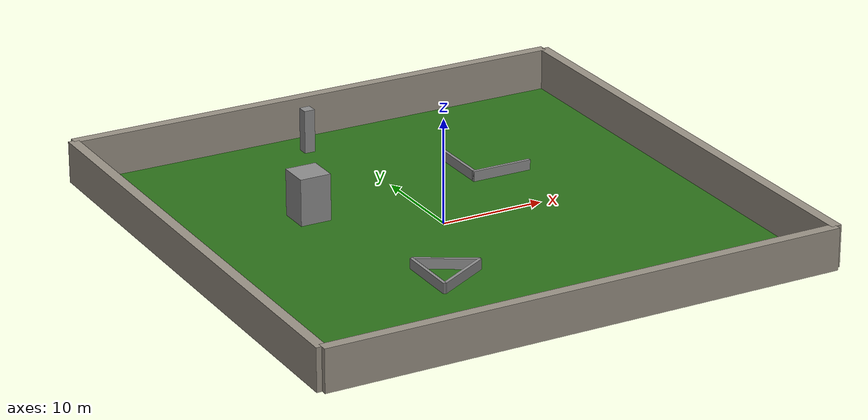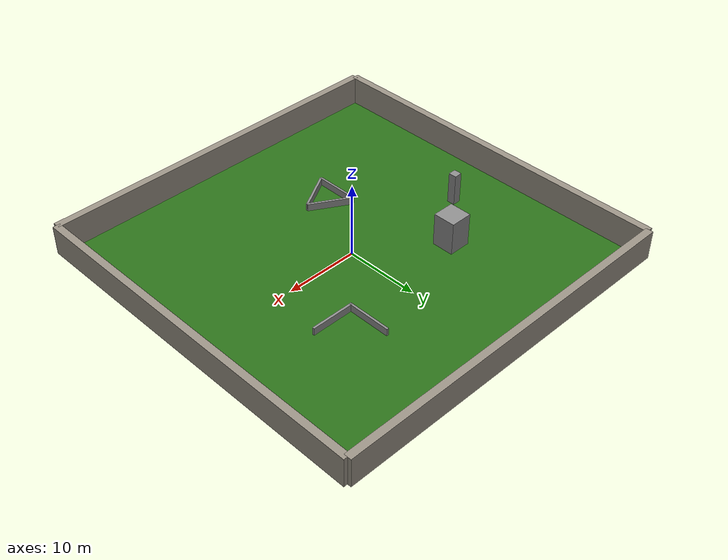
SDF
<?xml version="1.0" ?>
<sdf version="1.6">
  <world name="simple_50x50">

    <!-- gz (Harmonic) core systems -->
    <plugin filename="gz-sim-physics-system" name="gz::sim::systems::Physics"/>
    <plugin filename="gz-sim-user-commands-system" name="gz::sim::systems::UserCommands"/>
    <plugin filename="gz-sim-scene-broadcaster-system" name="gz::sim::systems::SceneBroadcaster"/>
    <plugin filename="gz-sim-sensors-system" name="gz::sim::systems::Sensors">
      <render_engine>ogre2</render_engine>
    </plugin>
    <plugin filename="gz-sim-imu-system" name="gz::sim::systems::Imu"/>

    <gravity>0 0 -9.8</gravity>

    <light type="directional" name="sun">
      <cast_shadows>true</cast_shadows>
      <pose>0 0 10 0 0 0</pose>
      <diffuse>0.8 0.8 0.8 1</diffuse>
      <specular>0.2 0.2 0.2 1</specular>
      <direction>-0.5 0.1 -0.9</direction>
    </light>

    <physics name="1ms" type="ode">
      <max_step_size>0.001</max_step_size>
      <real_time_factor>1.0</real_time_factor>
      <real_time_update_rate>1000</real_time_update_rate>
    </physics>

    <scene>
      <ambient>0.65 0.65 0.65 1</ambient>
      <background>0.68 0.83 1.0 1</background>
      <shadows>true</shadows>
    </scene>

    <model name="ground">
      <static>true</static>
      <pose>0 0 0 0 0 0</pose>
      <link name="link">
        <collision name="collision">
          <geometry><box><size>50 50 0.005</size></box></geometry>
        </collision>
        <visual name="visual">
          <cast_shadows>false</cast_shadows>
          <geometry><box><size>50 50 0.005</size></box></geometry>
          <material>
            <ambient>0.13 0.38 0.08 1</ambient>
            <diffuse>0.17 0.44 0.10 1</diffuse>
            <specular>0.01 0.01 0.01 1</specular>
          </material>
        </visual>
      </link>
    </model>

    <model name="wall_north">
      <static>true</static>
      <pose>0 25 2.0 0 0 0</pose>
      <link name="link">
        <collision name="collision">
          <geometry><box><size>50 1 4</size></box></geometry>
        </collision>
        <visual name="visual">
          <cast_shadows>false</cast_shadows>
          <geometry><box><size>50 1 4</size></box></geometry>
          <material>
            <ambient>0.52 0.50 0.46 1</ambient>
            <diffuse>0.60 0.57 0.52 1</diffuse>
          </material>
        </visual>
      </link>
    </model>

    <model name="wall_south">
      <static>true</static>
      <pose>0 -25 2.0 0 0 0</pose>
      <link name="link">
        <collision name="collision">
          <geometry><box><size>50 1 4</size></box></geometry>
        </collision>
        <visual name="visual">
          <cast_shadows>false</cast_shadows>
          <geometry><box><size>50 1 4</size></box></geometry>
          <material>
            <ambient>0.52 0.50 0.46 1</ambient>
            <diffuse>0.60 0.57 0.52 1</diffuse>
          </material>
        </visual>
      </link>
    </model>

    <model name="wall_east">
      <static>true</static>
      <pose>25 0 2.0 0 0 0</pose>
      <link name="link">
        <collision name="collision">
          <geometry><box><size>1 50 4</size></box></geometry>
        </collision>
        <visual name="visual">
          <cast_shadows>false</cast_shadows>
          <geometry><box><size>1 50 4</size></box></geometry>
          <material>
            <ambient>0.52 0.50 0.46 1</ambient>
            <diffuse>0.60 0.57 0.52 1</diffuse>
          </material>
        </visual>
      </link>
    </model>

    <model name="wall_west">
      <static>true</static>
      <pose>-25 0 2.0 0 0 0</pose>
      <link name="link">
        <collision name="collision">
          <geometry><box><size>1 50 4</size></box></geometry>
        </collision>
        <visual name="visual">
          <cast_shadows>false</cast_shadows>
          <geometry><box><size>1 50 4</size></box></geometry>
          <material>
            <ambient>0.52 0.50 0.46 1</ambient>
            <diffuse>0.60 0.57 0.52 1</diffuse>
          </material>
        </visual>
      </link>
    </model>

    <model name="l_wall_horizontal">
      <static>true</static>
      <pose>10.071 7.221 0.5 0 0 0</pose>
      <link name="link">
        <collision name="collision">
          <geometry><box><size>6.0 0.3 1.0</size></box></geometry>
        </collision>
        <visual name="visual">
          <cast_shadows>false</cast_shadows>
          <geometry><box><size>6.0 0.3 1.0</size></box></geometry>
          <material>
            <ambient>0.45 0.45 0.45 1</ambient>
            <diffuse>0.55 0.55 0.55 1</diffuse>
          </material>
        </visual>
      </link>
    </model>

    <model name="l_wall_vertical">
      <static>true</static>
      <pose>7.221 10.071 0.5 0 0 0</pose>
      <link name="link">
        <collision name="collision">
          <geometry><box><size>0.3 6.0 1.0</size></box></geometry>
        </collision>
        <visual name="visual">
          <cast_shadows>false</cast_shadows>
          <geometry><box><size>0.3 6.0 1.0</size></box></geometry>
          <material>
            <ambient>0.45 0.45 0.45 1</ambient>
            <diffuse>0.55 0.55 0.55 1</diffuse>
          </material>
        </visual>
      </link>
    </model>

    <model name="tr_triangle_side_1">
      <static>true</static>
      <pose>-7.221 -10.221 0.5 0 0 1.57079632679</pose>
      <link name="link">
        <collision name="collision">
          <geometry><box><size>6.0 0.3 1.0</size></box></geometry>
        </collision>
        <visual name="visual">
          <cast_shadows>false</cast_shadows>
          <geometry><box><size>6.0 0.3 1.0</size></box></geometry>
          <material>
            <ambient>0.45 0.45 0.45 1</ambient>
            <diffuse>0.55 0.55 0.55 1</diffuse>
          </material>
        </visual>
      </link>
    </model>

    <model name="tr_triangle_side_2">
      <static>true</static>
      <pose>-4.623 -8.721 0.5 0 0 -0.5235987756</pose>
      <link name="link">
        <collision name="collision">
          <geometry><box><size>6.0 0.3 1.0</size></box></geometry>
        </collision>
        <visual name="visual">
          <cast_shadows>false</cast_shadows>
          <geometry><box><size>6.0 0.3 1.0</size></box></geometry>
          <material>
            <ambient>0.45 0.45 0.45 1</ambient>
            <diffuse>0.55 0.55 0.55 1</diffuse>
          </material>
        </visual>
      </link>
    </model>

    <model name="tr_triangle_side_3">
      <static>true</static>
      <pose>-4.623 -11.721 0.5 0 0 0.5235987756</pose>
      <link name="link">
        <collision name="collision">
          <geometry><box><size>6.0 0.3 1.0</size></box></geometry>
        </collision>
        <visual name="visual">
          <cast_shadows>false</cast_shadows>
          <geometry><box><size>6.0 0.3 1.0</size></box></geometry>
          <material>
            <ambient>0.45 0.45 0.45 1</ambient>
            <diffuse>0.55 0.55 0.55 1</diffuse>
          </material>
        </visual>
      </link>
    </model>

    <model name="tree">
      <static>true</static>
      <pose>-10.0 7.0 0.5 0 0 0</pose>
      <link name="link">
        <collision name="collision">
          <geometry><box><size>3.0 3.0 8.0</size></box></geometry>
        </collision>
        <visual name="visual">
          <cast_shadows>false</cast_shadows>
          <geometry><box><size>3.0 3.0 8.0</size></box></geometry>
          <material>
            <ambient>0.45 0.45 0.45 1</ambient>
            <diffuse>0.55 0.55 0.55 1</diffuse>
          </material>
        </visual>
      </link>
    </model>

    <model name="tree_2">
      <static>true</static>
      <pose>-10.0 7.0 8.5 0 0 0</pose>
      <link name="link">
        <collision name="collision">
          <geometry><box><size>1.0 1.0 4.0</size></box></geometry>
        </collision>
        <visual name="visual">
          <cast_shadows>false</cast_shadows>
          <geometry><box><size>1.0 1.0 4.0</size></box></geometry>
          <material>
            <ambient>0.45 0.45 0.45 1</ambient>
            <diffuse>0.55 0.55 0.55 1</diffuse>
          </material>
        </visual>
      </link>
    </model>

  </world>
</sdf>
